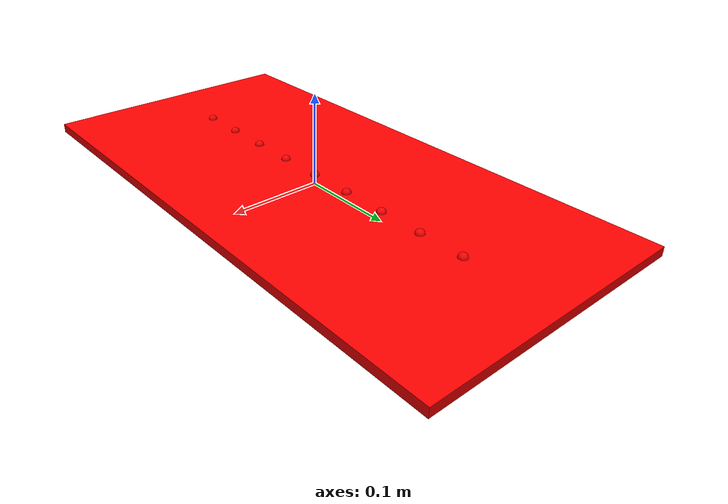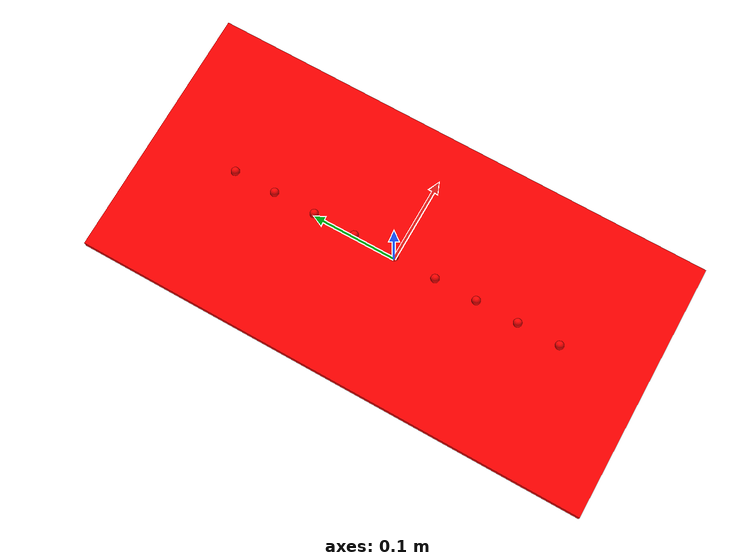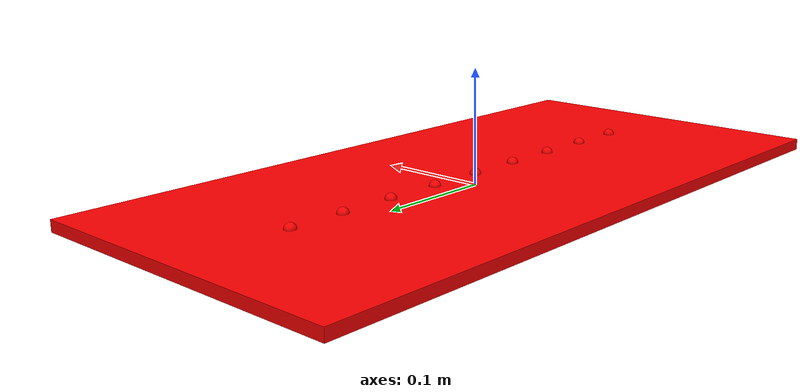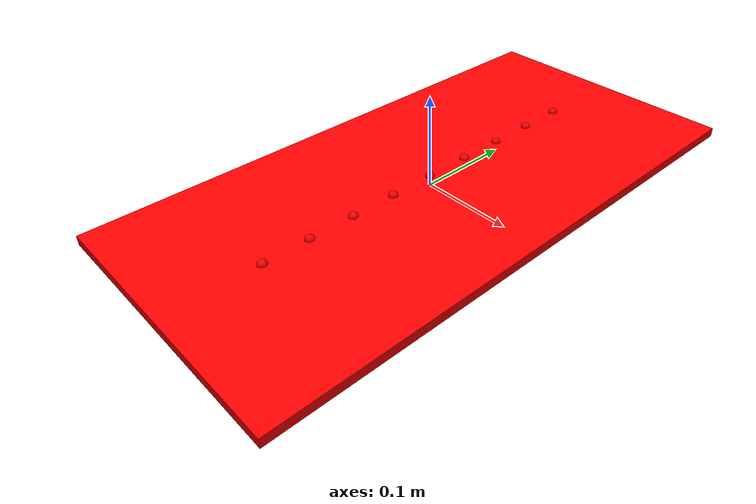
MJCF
<mujoco model="flat_top">
  <asset>
    <mesh file="meshes/flat_top.stl" name="flat_top_mesh" scale="0.001 0.001 0.001"/>
  </asset>
  <worldbody>
    <body>
      <body name="object">
        <geom pos="0 0 0.005" rgba="1 0 0 1" type="box" size="0.15 0.30 0.005"  friction="0.003 0.005 0.0001" group="0"/>

        <site type="sphere" rgba="1 0 0 1" size="0.005" group="0" pos="0 -0.2 0.01" name="site_1"/>
        <site type="sphere" rgba="1 0 0 1" size="0.005" group="1" pos="0 -0.15 0.01" name="site_2"/>

        <site type="sphere" rgba="1 0 0 1" size="0.005" group="1" pos="0 -0.1 0.01" name="site_3"/>

        <site type="sphere" rgba="1 0 0 1" size="0.005" group="1" pos="0 -0.05 0.01" name="site_4"/>

        <site type="sphere" rgba="1 0 0 1" size="0.005" group="1" pos="0 0 0.01" name="site_5"/>

        <site type="sphere" rgba="1 0 0 1" size="0.005" group="1" pos="0 0.05 0.01" name="site_6"/>

        <site type="sphere" rgba="1 0 0 1" size="0.005" group="1" pos="0 0.10 0.01" name="site_7"/>

        <site type="sphere" rgba="1 0 0 1" size="0.005" group="1" pos="0 0.15 0.01" name="site_8"/>

        <site type="sphere" rgba="1 0 0 1" size="0.005" group="1" pos="0 0.2 0.01" name="site_9"/>
      </body>

      <site rgba="0 0 0 0" size="0.005" pos="0 0 0" name="bottom_site"/>

      <site rgba="0 0 0 0" size="0.005" pos="0 0 0" name="top_site"/>

      <site rgba="0 0 0 0" size="0.005" pos="0. 0. 0" name="horizontal_radius_site"/>
    </body>
  </worldbody>
</mujoco>
